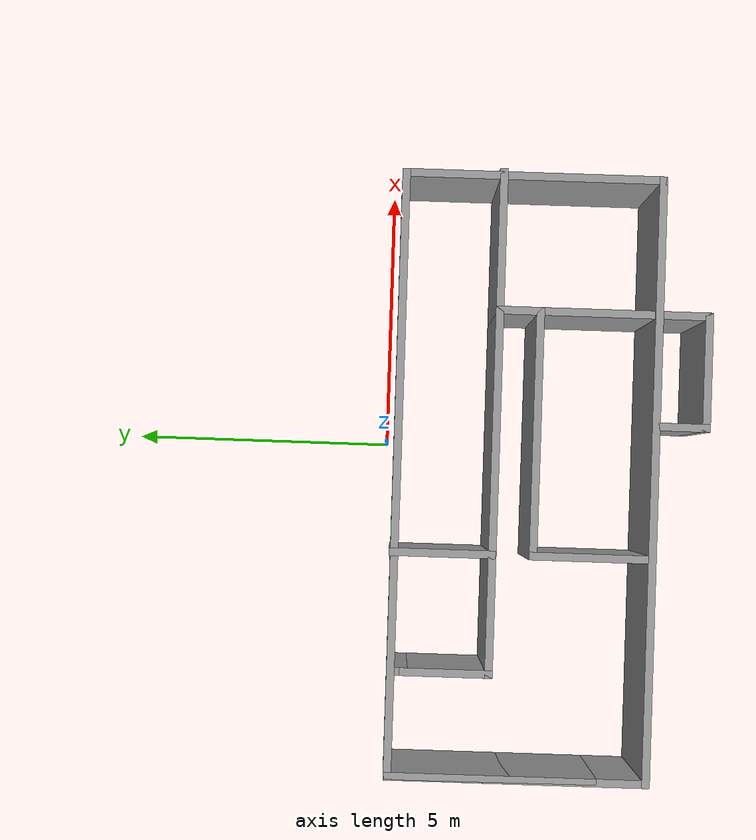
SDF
<?xml version='1.0'?>
<sdf version='1.6'>
  <model name='model'>
    <pose frame=''>-0.554488 -3.09559 0 0 -0 0</pose>
    <link name='Wall_0'>
      <collision name='Wall_0_Collision'>
        <geometry>
          <box>
            <size>4 0.15 2.5</size>
          </box>
        </geometry>
        <pose frame=''>0 0 1.25 0 -0 0</pose>
      </collision>
      <visual name='Wall_0_Visual'>
        <pose frame=''>0 0 1.25 0 -0 0</pose>
        <geometry>
          <box>
            <size>4 0.15 2.5</size>
          </box>
        </geometry>
        <material>
          <script>
            <uri>file://media/materials/scripts/gazebo.material</uri>
            <name>Gazebo/Grey</name>
          </script>
          <ambient>1 1 1 1</ambient>
        </material>
        <meta>
          <layer>0</layer>
        </meta>
      </visual>
      <pose frame=''>-5.70551 0.960587 0 0 -0 1.5708</pose>
    </link>
    <link name='Wall_1'>
      <collision name='Wall_1_Collision'>
        <geometry>
          <box>
            <size>5 0.15 2.5</size>
          </box>
        </geometry>
        <pose frame=''>0 0 1.25 0 -0 0</pose>
      </collision>
      <visual name='Wall_1_Visual'>
        <pose frame=''>0 0 1.25 0 -0 0</pose>
        <geometry>
          <box>
            <size>5 0.15 2.5</size>
          </box>
        </geometry>
        <material>
          <script>
            <uri>file://media/materials/scripts/gazebo.material</uri>
            <name>Gazebo/Grey</name>
          </script>
          <ambient>1 1 1 1</ambient>
        </material>
        <meta>
          <layer>0</layer>
        </meta>
      </visual>
      <pose frame=''>-5.70551 0.460587 0 0 -0 -1.5708</pose>
    </link>
    <link name='Wall_10'>
      <collision name='Wall_10_Collision'>
        <geometry>
          <box>
            <size>1.25 0.15 2.5</size>
          </box>
        </geometry>
        <pose frame=''>0 0 1.25 0 -0 0</pose>
      </collision>
      <visual name='Wall_10_Visual'>
        <pose frame=''>0 0 1.25 0 -0 0</pose>
        <geometry>
          <box>
            <size>1.25 0.15 2.5</size>
          </box>
        </geometry>
        <material>
          <script>
            <uri>file://media/materials/scripts/gazebo.material</uri>
            <name>Gazebo/Grey</name>
          </script>
          <ambient>1 1 1 1</ambient>
        </material>
        <meta>
          <layer>0</layer>
        </meta>
      </visual>
      <pose frame=''>3.10551 -2.35661 0 0 -0 -1.5708</pose>
    </link>
    <link name='Wall_11'>
      <collision name='Wall_11_Collision'>
        <geometry>
          <box>
            <size>2.25 0.15 2.5</size>
          </box>
        </geometry>
        <pose frame=''>0 0 1.25 0 -0 0</pose>
      </collision>
      <visual name='Wall_11_Visual'>
        <pose frame=''>0 0 1.25 0 -0 0</pose>
        <geometry>
          <box>
            <size>2.25 0.15 2.5</size>
          </box>
        </geometry>
        <material>
          <script>
            <uri>file://media/materials/scripts/gazebo.material</uri>
            <name>Gazebo/Grey</name>
          </script>
          <ambient>1 1 1 1</ambient>
        </material>
        <meta>
          <layer>0</layer>
        </meta>
      </visual>
      <pose frame=''>2.05551 -2.90661 0 0 -0 3.14159</pose>
    </link>
    <link name='Wall_12'>
      <collision name='Wall_12_Collision'>
        <geometry>
          <box>
            <size>1 0.15 2.5</size>
          </box>
        </geometry>
        <pose frame=''>0 0 1.25 0 -0 0</pose>
      </collision>
      <visual name='Wall_12_Visual'>
        <pose frame=''>0 0 1.25 0 -0 0</pose>
        <geometry>
          <box>
            <size>1 0.15 2.5</size>
          </box>
        </geometry>
        <material>
          <script>
            <uri>file://media/materials/scripts/gazebo.material</uri>
            <name>Gazebo/Grey</name>
          </script>
          <ambient>1 1 1 1</ambient>
        </material>
        <meta>
          <layer>0</layer>
        </meta>
      </visual>
      <pose frame=''>1.00551 -2.48161 0 0 -0 1.5708</pose>
    </link>
    <link name='Wall_14'>
      <collision name='Wall_14_Collision'>
        <geometry>
          <box>
            <size>7 0.15 2.5</size>
          </box>
        </geometry>
        <pose frame=''>0 0 1.25 0 -0 0</pose>
      </collision>
      <visual name='Wall_14_Visual'>
        <pose frame=''>0 0 1.25 0 -0 0</pose>
        <geometry>
          <box>
            <size>7 0.15 2.5</size>
          </box>
        </geometry>
        <material>
          <script>
            <uri>file://media/materials/scripts/gazebo.material</uri>
            <name>Gazebo/Grey</name>
          </script>
          <ambient>1 1 1 1</ambient>
        </material>
        <meta>
          <layer>0</layer>
        </meta>
      </visual>
      <pose frame=''>-0.319487 1.04339 0 0 -0 3.14159</pose>
    </link>
    <link name='Wall_15'>
      <collision name='Wall_15_Collision'>
        <geometry>
          <box>
            <size>1.75 0.15 2.5</size>
          </box>
        </geometry>
        <pose frame=''>0 0 1.25 0 -0 0</pose>
      </collision>
      <visual name='Wall_15_Visual'>
        <pose frame=''>0 0 1.25 0 -0 0</pose>
        <geometry>
          <box>
            <size>1.75 0.15 2.5</size>
          </box>
        </geometry>
        <material>
          <script>
            <uri>file://media/materials/scripts/gazebo.material</uri>
            <name>Gazebo/Grey</name>
          </script>
          <ambient>1 1 1 1</ambient>
        </material>
        <meta>
          <layer>0</layer>
        </meta>
      </visual>
      <pose frame=''>-3.74449 1.84339 0 0 -0 1.5708</pose>
    </link>
    <link name='Wall_16'>
      <collision name='Wall_16_Collision'>
        <geometry>
          <box>
            <size>0.25 0.15 2.5</size>
          </box>
        </geometry>
        <pose frame=''>0 0 1.25 0 -0 0</pose>
      </collision>
      <visual name='Wall_16_Visual'>
        <pose frame=''>0 0 1.25 0 -0 0</pose>
        <geometry>
          <box>
            <size>0.25 0.15 2.5</size>
          </box>
        </geometry>
        <material>
          <script>
            <uri>file://media/materials/scripts/gazebo.material</uri>
            <name>Gazebo/Grey</name>
          </script>
          <ambient>1 1 1 1</ambient>
        </material>
        <meta>
          <layer>0</layer>
        </meta>
      </visual>
      <pose frame=''>-3.74449 2.69339 0 0 -0 1.5708</pose>
    </link>
    <link name='Wall_18'>
      <collision name='Wall_18_Collision'>
        <geometry>
          <box>
            <size>4.75 0.15 2.5</size>
          </box>
        </geometry>
        <pose frame=''>0 0 1.25 0 -0 0</pose>
      </collision>
      <visual name='Wall_18_Visual'>
        <pose frame=''>0 0 1.25 0 -0 0</pose>
        <geometry>
          <box>
            <size>4.75 0.15 2.5</size>
          </box>
        </geometry>
        <material>
          <script>
            <uri>file://media/materials/scripts/gazebo.material</uri>
            <name>Gazebo/Grey</name>
          </script>
          <ambient>1 1 1 1</ambient>
        </material>
        <meta>
          <layer>0</layer>
        </meta>
      </visual>
      <pose frame=''>0.800188 0.276337 0 0 -0 3.14159</pose>
    </link>
    <link name='Wall_19'>
      <collision name='Wall_19_Collision'>
        <geometry>
          <box>
            <size>2.25 0.15 2.5</size>
          </box>
        </geometry>
        <pose frame=''>0 0 1.25 0 -0 0</pose>
      </collision>
      <visual name='Wall_19_Visual'>
        <pose frame=''>0 0 1.25 0 -0 0</pose>
        <geometry>
          <box>
            <size>2.25 0.15 2.5</size>
          </box>
        </geometry>
        <material>
          <script>
            <uri>file://media/materials/scripts/gazebo.material</uri>
            <name>Gazebo/Grey</name>
          </script>
          <ambient>1 1 1 1</ambient>
        </material>
        <meta>
          <layer>0</layer>
        </meta>
      </visual>
      <pose frame=''>-1.49981 -0.773663 0 0 -0 -1.5708</pose>
    </link>
    <link name='Wall_2'>
      <collision name='Wall_2_Collision'>
        <geometry>
          <box>
            <size>11.5 0.15 2.5</size>
          </box>
        </geometry>
        <pose frame=''>0 0 1.25 0 -0 0</pose>
      </collision>
      <visual name='Wall_2_Visual'>
        <pose frame=''>0 0 1.25 0 -0 0</pose>
        <geometry>
          <box>
            <size>11.5 0.15 2.5</size>
          </box>
        </geometry>
        <material>
          <script>
            <uri>file://media/materials/scripts/gazebo.material</uri>
            <name>Gazebo/Grey</name>
          </script>
          <ambient>1 1 1 1</ambient>
        </material>
        <meta>
          <layer>0</layer>
        </meta>
      </visual>
      <pose frame=''>-0.030512 -1.96441 0 0 -0 0</pose>
    </link>
    <link name='Wall_22'>
      <collision name='Wall_22_Collision'>
        <geometry>
          <box>
            <size>2 0.15 2.5</size>
          </box>
        </geometry>
        <pose frame=''>0 0 1.25 0 -0 0</pose>
      </collision>
      <visual name='Wall_22_Visual'>
        <pose frame=''>0 0 1.25 0 -0 0</pose>
        <geometry>
          <box>
            <size>2 0.15 2.5</size>
          </box>
        </geometry>
        <material>
          <script>
            <uri>file://media/materials/scripts/gazebo.material</uri>
            <name>Gazebo/Grey</name>
          </script>
          <ambient>1 1 1 1</ambient>
        </material>
        <meta>
          <layer>0</layer>
        </meta>
      </visual>
      <pose frame=''>-1.50211 1.98161 0 0 -0 1.5708</pose>
    </link>
    <link name='Wall_3'>
      <collision name='Wall_3_Collision'>
        <geometry>
          <box>
            <size>5 0.15 2.5</size>
          </box>
        </geometry>
        <pose frame=''>0 0 1.25 0 -0 0</pose>
      </collision>
      <visual name='Wall_3_Visual'>
        <pose frame=''>0 0 1.25 0 -0 0</pose>
        <geometry>
          <box>
            <size>5 0.15 2.5</size>
          </box>
        </geometry>
        <material>
          <script>
            <uri>file://media/materials/scripts/gazebo.material</uri>
            <name>Gazebo/Grey</name>
          </script>
          <ambient>1 1 1 1</ambient>
        </material>
        <meta>
          <layer>0</layer>
        </meta>
      </visual>
      <pose frame=''>5.64449 0.460587 0 0 -0 1.5708</pose>
    </link>
    <link name='Wall_4'>
      <collision name='Wall_4_Collision'>
        <geometry>
          <box>
            <size>11.5 0.15 2.5</size>
          </box>
        </geometry>
        <pose frame=''>0 0 1.25 0 -0 0</pose>
      </collision>
      <visual name='Wall_4_Visual'>
        <pose frame=''>0 0 1.25 0 -0 0</pose>
        <geometry>
          <box>
            <size>11.5 0.15 2.5</size>
          </box>
        </geometry>
        <material>
          <script>
            <uri>file://media/materials/scripts/gazebo.material</uri>
            <name>Gazebo/Grey</name>
          </script>
          <ambient>1 1 1 1</ambient>
        </material>
        <meta>
          <layer>0</layer>
        </meta>
      </visual>
      <pose frame=''>-0.030512 2.88559 0 0 -0 3.14159</pose>
    </link>
    <link name='Wall_8'>
      <collision name='Wall_8_Collision'>
        <geometry>
          <box>
            <size>2.75 0.15 2.5</size>
          </box>
        </geometry>
        <pose frame=''>0 0 1.25 0 -0 0</pose>
      </collision>
      <visual name='Wall_8_Visual'>
        <pose frame=''>0 0 1.25 0 -0 0</pose>
        <geometry>
          <box>
            <size>2.75 0.15 2.5</size>
          </box>
        </geometry>
        <material>
          <script>
            <uri>file://media/materials/scripts/gazebo.material</uri>
            <name>Gazebo/Grey</name>
          </script>
          <ambient>1 1 1 1</ambient>
        </material>
        <meta>
          <layer>0</layer>
        </meta>
      </visual>
      <pose frame=''>4.40551 1.04339 0 0 -0 3.14159</pose>
    </link>
    <link name='Wall_9'>
      <collision name='Wall_9_Collision'>
        <geometry>
          <box>
            <size>3 0.15 2.5</size>
          </box>
        </geometry>
        <pose frame=''>0 0 1.25 0 -0 0</pose>
      </collision>
      <visual name='Wall_9_Visual'>
        <pose frame=''>0 0 1.25 0 -0 0</pose>
        <geometry>
          <box>
            <size>3 0.15 2.5</size>
          </box>
        </geometry>
        <material>
          <script>
            <uri>file://media/materials/scripts/gazebo.material</uri>
            <name>Gazebo/Grey</name>
          </script>
          <ambient>1 1 1 1</ambient>
        </material>
        <meta>
          <layer>0</layer>
        </meta>
      </visual>
      <pose frame=''>3.10551 -0.381613 0 0 -0 -1.5708</pose>
    </link>
    <static>1</static>
  </model>
</sdf>
